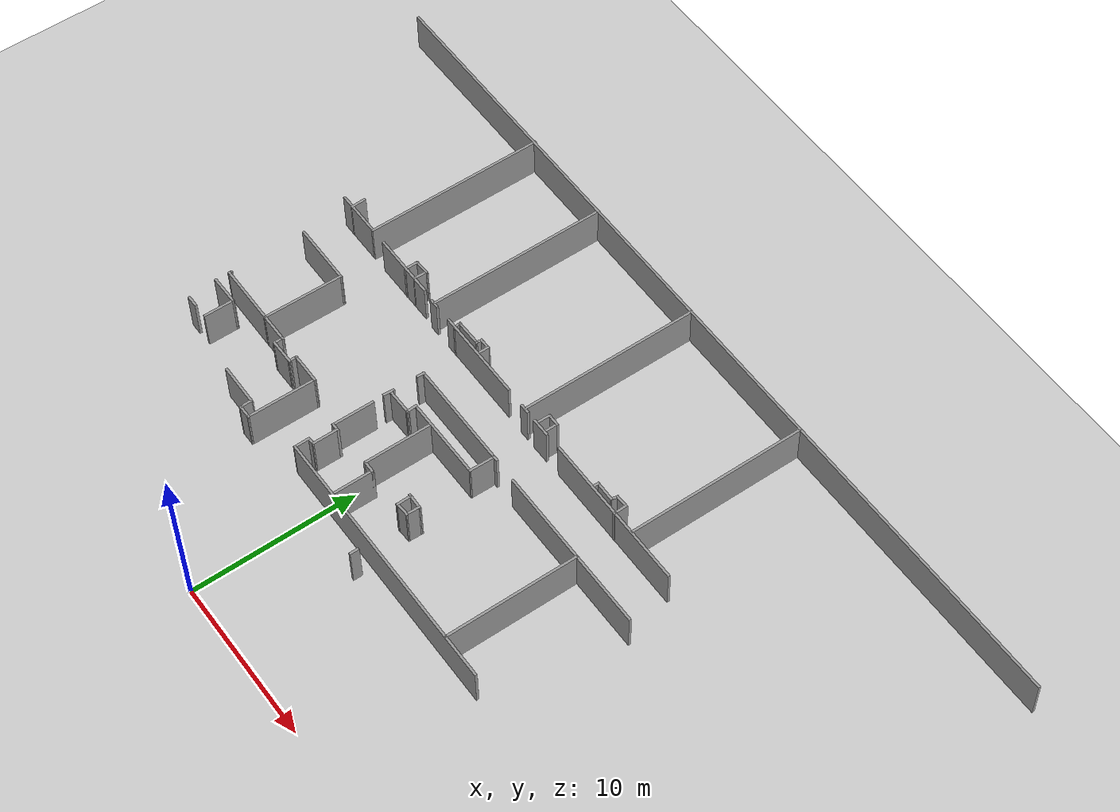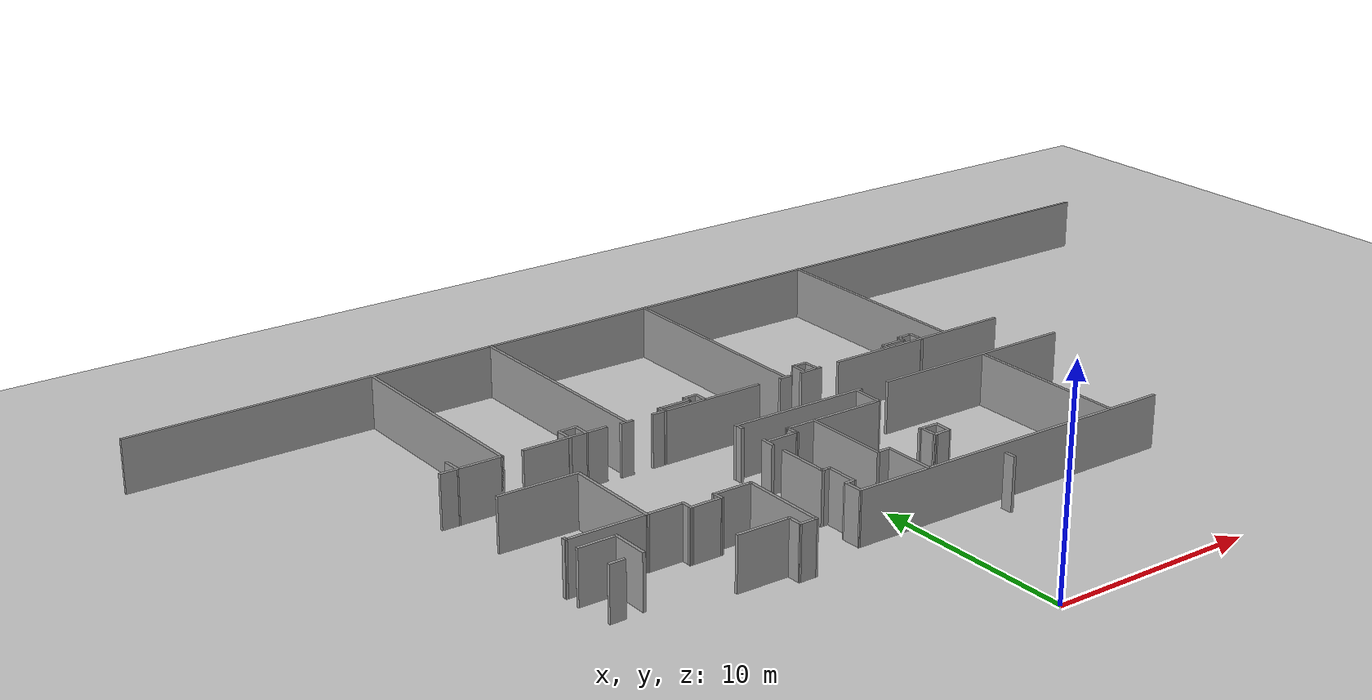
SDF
<sdf version="1.7">
 <world name="default">
  <model name="ground_plane">
   <static>1</static>
   <link name="link">
    <collision name="collision">
     <geometry><plane><normal>0 0 1</normal><size>100 100</size></plane></geometry>
     <surface><friction><ode><mu>100</mu><mu2>50</mu2></ode></friction></surface>
    </collision>
    <visual name="visual">
     <cast_shadows>0</cast_shadows>
     <geometry><plane><normal>0 0 1</normal><size>100 100</size></plane></geometry>
     <material>
      <script><uri>file://media/materials/scripts/gazebo.material</uri><name>Gazebo/Grey</name></script>
     </material>
    </visual>
   </link>
  </model>
  <model name="HopperFloorGround_Full">
   <pose>5.96828 -4.00427 0 0 -0 0</pose>
   <link name="Wall_112">
    <collision name="Wall_112_Collision">
     <geometry><box><size>0.75 0.15 2.5</size></box></geometry>
     <pose>0 0 1.25 0 -0 0</pose>
    </collision>
    <visual name="Wall_112_Visual">
     <pose>0 0 1.25 0 -0 0</pose>
     <geometry><box><size>0.75 0.15 2.5</size></box></geometry>
     <material>
      <script><uri>file://media/materials/scripts/gazebo.material</uri><name>Gazebo/Grey</name></script>
      <ambient>1 1 1 1</ambient>
     </material>
     <meta><layer>0</layer></meta>
    </visual>
    <pose>-20.122 12.8829 0 0 -0 3.14159</pose>
   </link>
   <link name="Wall_143">
    <collision name="Wall_143_Collision">
     <geometry><box><size>3.9067 0.15 2.5</size></box></geometry>
     <pose>0 0 1.25 0 -0 0</pose>
    </collision>
    <visual name="Wall_143_Visual">
     <pose>0 0 1.25 0 -0 0</pose>
     <geometry><box><size>3.9067 0.15 2.5</size></box></geometry>
     <material>
      <script><uri>file://media/materials/scripts/gazebo.material</uri><name>Gazebo/Grey</name></script>
      <ambient>1 1 1 1</ambient>
     </material>
     <meta><layer>0</layer></meta>
    </visual>
    <pose>-18.7599 20.2897 0 0 -0 -0.004631</pose>
   </link>
   <link name="Wall_144">
    <collision name="Wall_144_Collision">
     <geometry><box><size>4.92593 0.15 2.5</size></box></geometry>
     <pose>0 0 1.25 0 -0 0</pose>
    </collision>
    <visual name="Wall_144_Visual">
     <pose>0 0 1.25 0 -0 0</pose>
     <geometry><box><size>4.92593 0.15 2.5</size></box></geometry>
     <material>
      <script><uri>file://media/materials/scripts/gazebo.material</uri><name>Gazebo/Grey</name></script>
      <ambient>1 1 1 1</ambient>
     </material>
     <meta><layer>0</layer></meta>
    </visual>
    <pose>-16.9045 17.8932 0 0 -0 -1.58035</pose>
   </link>
   <link name="Wall_145">
    <collision name="Wall_145_Collision">
     <geometry><box><size>1.89901 0.15 2.5</size></box></geometry>
     <pose>0 0 1.25 0 -0 0</pose>
    </collision>
    <visual name="Wall_145_Visual">
     <pose>0 0 1.25 0 -0 0</pose>
     <geometry><box><size>1.89901 0.15 2.5</size></box></geometry>
     <material>
      <script><uri>file://media/materials/scripts/gazebo.material</uri><name>Gazebo/Grey</name></script>
      <ambient>1 1 1 1</ambient>
     </material>
     <meta><layer>0</layer></meta>
    </visual>
    <pose>-16.0528 15.5054 0 0 -0 0</pose>
   </link>
   <link name="Wall_147">
    <collision name="Wall_147_Collision">
     <geometry><box><size>0.25 0.15 2.5</size></box></geometry>
     <pose>0 0 1.25 0 -0 0</pose>
    </collision>
    <visual name="Wall_147_Visual">
     <pose>0 0 1.25 0 -0 0</pose>
     <geometry><box><size>0.25 0.15 2.5</size></box></geometry>
     <material>
      <script><uri>file://media/materials/scripts/gazebo.material</uri><name>Gazebo/Grey</name></script>
      <ambient>1 1 1 1</ambient>
     </material>
     <meta><layer>0</layer></meta>
    </visual>
    <pose>-20.623 15.5619 0 0 -0 -1.5708</pose>
   </link>
   <link name="Wall_148">
    <collision name="Wall_148_Collision">
     <geometry><box><size>3.84573 0.15 2.5</size></box></geometry>
     <pose>0 0 1.25 0 -0 0</pose>
    </collision>
    <visual name="Wall_148_Visual">
     <pose>0 0 1.25 0 -0 0</pose>
     <geometry><box><size>3.84573 0.15 2.5</size></box></geometry>
     <material>
      <script><uri>file://media/materials/scripts/gazebo.material</uri><name>Gazebo/Grey</name></script>
      <ambient>1 1 1 1</ambient>
     </material>
     <meta><layer>0</layer></meta>
    </visual>
    <pose>-18.7751 15.5087 0 0 -0 -0.001748</pose>
   </link>
   <link name="Wall_152">
    <collision name="Wall_152_Collision">
     <geometry><box><size>0.651889 0.15 2.5</size></box></geometry>
     <pose>0 0 1.25 0 -0 0</pose>
    </collision>
    <visual name="Wall_152_Visual">
     <pose>0 0 1.25 0 -0 0</pose>
     <geometry><box><size>0.651889 0.15 2.5</size></box></geometry>
     <material>
      <script><uri>file://media/materials/scripts/gazebo.material</uri><name>Gazebo/Grey</name></script>
      <ambient>1 1 1 1</ambient>
     </material>
     <meta><layer>0</layer></meta>
    </visual>
    <pose>-15.1783 15.2545 0 0 -0 -1.5708</pose>
   </link>
   <link name="Wall_153">
    <collision name="Wall_153_Collision">
     <geometry><box><size>1.64054 0.15 2.5</size></box></geometry>
     <pose>0 0 1.25 0 -0 0</pose>
    </collision>
    <visual name="Wall_153_Visual">
     <pose>0 0 1.25 0 -0 0</pose>
     <geometry><box><size>1.64054 0.15 2.5</size></box></geometry>
     <material>
      <script><uri>file://media/materials/scripts/gazebo.material</uri><name>Gazebo/Grey</name></script>
      <ambient>1 1 1 1</ambient>
     </material>
     <meta><layer>0</layer></meta>
    </visual>
    <pose>-14.433 15.0112 0 0 -0 0.010204</pose>
   </link>
   <link name="Wall_154">
    <collision name="Wall_154_Collision">
     <geometry><box><size>0.576116 0.15 2.5</size></box></geometry>
     <pose>0 0 1.25 0 -0 0</pose>
    </collision>
    <visual name="Wall_154_Visual">
     <pose>0 0 1.25 0 -0 0</pose>
     <geometry><box><size>0.576116 0.15 2.5</size></box></geometry>
     <material>
      <script><uri>file://media/materials/scripts/gazebo.material</uri><name>Gazebo/Grey</name></script>
      <ambient>1 1 1 1</ambient>
     </material>
     <meta><layer>0</layer></meta>
    </visual>
    <pose>-13.6954 15.2317 0 0 -0 1.6065</pose>
   </link>
   <link name="Wall_155">
    <collision name="Wall_155_Collision">
     <geometry><box><size>1.95991 0.15 2.5</size></box></geometry>
     <pose>0 0 1.25 0 -0 0</pose>
    </collision>
    <visual name="Wall_155_Visual">
     <pose>0 0 1.25 0 -0 0</pose>
     <geometry><box><size>1.95991 0.15 2.5</size></box></geometry>
     <material>
      <script><uri>file://media/materials/scripts/gazebo.material</uri><name>Gazebo/Grey</name></script>
      <ambient>1 1 1 1</ambient>
     </material>
     <meta><layer>0</layer></meta>
    </visual>
    <pose>-12.7981 15.4446 0 0 -0 0</pose>
   </link>
   <link name="Wall_156">
    <collision name="Wall_156_Collision">
     <geometry><box><size>4.22595 0.15 2.5</size></box></geometry>
     <pose>0 0 1.25 0 -0 0</pose>
    </collision>
    <visual name="Wall_156_Visual">
     <pose>0 0 1.25 0 -0 0</pose>
     <geometry><box><size>4.22595 0.15 2.5</size></box></geometry>
     <material>
      <script><uri>file://media/materials/scripts/gazebo.material</uri><name>Gazebo/Grey</name></script>
      <ambient>1 1 1 1</ambient>
     </material>
     <meta><layer>0</layer></meta>
    </visual>
    <pose>-11.9008 13.4066 0 0 -0 -1.57453</pose>
   </link>
   <link name="Wall_157">
    <collision name="Wall_157_Collision">
     <geometry><box><size>0.910437 0.15 2.5</size></box></geometry>
     <pose>0 0 1.25 0 -0 0</pose>
    </collision>
    <visual name="Wall_157_Visual">
     <pose>0 0 1.25 0 -0 0</pose>
     <geometry><box><size>0.910437 0.15 2.5</size></box></geometry>
     <material>
      <script><uri>file://media/materials/scripts/gazebo.material</uri><name>Gazebo/Grey</name></script>
      <ambient>1 1 1 1</ambient>
     </material>
     <meta><layer>0</layer></meta>
    </visual>
    <pose>-12.2886 11.3687 0 0 -0 3.14159</pose>
   </link>
   <link name="Wall_158">
    <collision name="Wall_158_Collision">
     <geometry><box><size>0.804683 0.15 2.5</size></box></geometry>
     <pose>0 0 1.25 0 -0 0</pose>
    </collision>
    <visual name="Wall_158_Visual">
     <pose>0 0 1.25 0 -0 0</pose>
     <geometry><box><size>0.804683 0.15 2.5</size></box></geometry>
     <material>
      <script><uri>file://media/materials/scripts/gazebo.material</uri><name>Gazebo/Grey</name></script>
      <ambient>1 1 1 1</ambient>
     </material>
     <meta><layer>0</layer></meta>
    </visual>
    <pose>-12.6764 11.6956 0 0 -0 1.59405</pose>
   </link>
   <link name="Wall_159">
    <collision name="Wall_159_Collision">
     <geometry><box><size>2.61386 0.15 2.5</size></box></geometry>
     <pose>0 0 1.25 0 -0 0</pose>
    </collision>
    <visual name="Wall_159_Visual">
     <pose>0 0 1.25 0 -0 0</pose>
     <geometry><box><size>2.61386 0.15 2.5</size></box></geometry>
     <material>
      <script><uri>file://media/materials/scripts/gazebo.material</uri><name>Gazebo/Grey</name></script>
      <ambient>1 1 1 1</ambient>
     </material>
     <meta><layer>0</layer></meta>
    </visual>
    <pose>-13.916 12.0302 0 0 -0 3.13542</pose>
   </link>
   <link name="Wall_286">
    <collision name="Wall_286_Collision">
     <geometry><box><size>1.87846 0.15 2.5</size></box></geometry>
     <pose>0 0 1.25 0 -0 0</pose>
    </collision>
    <visual name="Wall_286_Visual">
     <pose>0 0 1.25 0 -0 0</pose>
     <geometry><box><size>1.87846 0.15 2.5</size></box></geometry>
     <material>
      <script><uri>file://media/materials/scripts/gazebo.material</uri><name>Gazebo/Grey</name></script>
      <ambient>1 1 1 1</ambient>
     </material>
     <meta><layer>0</layer></meta>
    </visual>
    <pose>-19.759 14.6693 0 0 -0 0.008549</pose>
   </link>
   <link name="Wall_287">
    <collision name="Wall_287_Collision">
     <geometry><box><size>1.88883 0.15 2.5</size></box></geometry>
     <pose>0 0 1.25 0 -0 0</pose>
    </collision>
    <visual name="Wall_287_Visual">
     <pose>0 0 1.25 0 -0 0</pose>
     <geometry><box><size>1.88883 0.15 2.5</size></box></geometry>
     <material>
      <script><uri>file://media/materials/scripts/gazebo.material</uri><name>Gazebo/Grey</name></script>
      <ambient>1 1 1 1</ambient>
     </material>
     <meta><layer>0</layer></meta>
    </visual>
    <pose>-18.895 13.8073 0 0 -0 -1.5708</pose>
   </link>
   <link name="Wall_312">
    <collision name="Wall_312_Collision">
     <geometry><box><size>3 0.15 2.5</size></box></geometry>
     <pose>0 0 1.25 0 -0 0</pose>
    </collision>
    <visual name="Wall_312_Visual">
     <pose>0 0 1.25 0 -0 0</pose>
     <geometry><box><size>3 0.15 2.5</size></box></geometry>
     <material>
      <script><uri>file://media/materials/scripts/gazebo.material</uri><name>Gazebo/Grey</name></script>
      <ambient>1 1 1 1</ambient>
     </material>
     <meta><layer>0</layer></meta>
    </visual>
    <pose>-19.9465 23.4526 0 0 -0 0</pose>
   </link>
   <link name="Wall_314">
    <collision name="Wall_314_Collision">
     <geometry><box><size>4.15469 0.15 2.5</size></box></geometry>
     <pose>0 0 1.25 0 -0 0</pose>
    </collision>
    <visual name="Wall_314_Visual">
     <pose>0 0 1.25 0 -0 0</pose>
     <geometry><box><size>4.15469 0.15 2.5</size></box></geometry>
     <material>
      <script><uri>file://media/materials/scripts/gazebo.material</uri><name>Gazebo/Grey</name></script>
      <ambient>1 1 1 1</ambient>
     </material>
     <meta><layer>0</layer></meta>
    </visual>
    <pose>-15.4399 23.4526 0 0 -0 0</pose>
   </link>
   <link name="Wall_318">
    <collision name="Wall_318_Collision">
     <geometry><box><size>0.924084 0.15 2.5</size></box></geometry>
     <pose>0 0 1.25 0 -0 0</pose>
    </collision>
    <visual name="Wall_318_Visual">
     <pose>0 0 1.25 0 -0 0</pose>
     <geometry><box><size>0.924084 0.15 2.5</size></box></geometry>
     <material>
      <script><uri>file://media/materials/scripts/gazebo.material</uri><name>Gazebo/Grey</name></script>
      <ambient>1 1 1 1</ambient>
     </material>
     <meta><layer>0</layer></meta>
    </visual>
    <pose>-20.6135 23.8393 0 0 -0 -1.53082</pose>
   </link>
   <link name="Wall_320">
    <collision name="Wall_320_Collision">
     <geometry><box><size>0.516732 0.15 2.5</size></box></geometry>
     <pose>0 0 1.25 0 -0 0</pose>
    </collision>
    <visual name="Wall_320_Visual">
     <pose>0 0 1.25 0 -0 0</pose>
     <geometry><box><size>0.516732 0.15 2.5</size></box></geometry>
     <material>
      <script><uri>file://media/materials/scripts/gazebo.material</uri><name>Gazebo/Grey</name></script>
      <ambient>1 1 1 1</ambient>
     </material>
     <meta><layer>0</layer></meta>
    </visual>
    <pose>-8.86715 20.1664 0 0 -0 1.5153</pose>
   </link>
   <link name="Wall_321">
    <collision name="Wall_321_Collision">
     <geometry><box><size>6.94445 0.15 2.5</size></box></geometry>
     <pose>0 0 1.25 0 -0 0</pose>
    </collision>
    <visual name="Wall_321_Visual">
     <pose>0 0 1.25 0 -0 0</pose>
     <geometry><box><size>6.94445 0.15 2.5</size></box></geometry>
     <material>
      <script><uri>file://media/materials/scripts/gazebo.material</uri><name>Gazebo/Grey</name></script>
      <ambient>1 1 1 1</ambient>
     </material>
     <meta><layer>0</layer></meta>
    </visual>
    <pose>-5.48009 20.3494 0 0 -0 0</pose>
   </link>
   <link name="Wall_324">
    <collision name="Wall_324_Collision">
     <geometry><box><size>1.61481 0.15 2.5</size></box></geometry>
     <pose>0 0 1.25 0 -0 0</pose>
    </collision>
    <visual name="Wall_324_Visual">
     <pose>0 0 1.25 0 -0 0</pose>
     <geometry><box><size>1.61481 0.15 2.5</size></box></geometry>
     <material>
      <script><uri>file://media/materials/scripts/gazebo.material</uri><name>Gazebo/Grey</name></script>
      <ambient>1 1 1 1</ambient>
     </material>
     <meta><layer>0</layer></meta>
    </visual>
    <pose>-2.31681 19.5968 0 0 -0 -1.58468</pose>
   </link>
   <link name="Wall_325">
    <collision name="Wall_325_Collision">
     <geometry><box><size>5.17468 0.15 2.5</size></box></geometry>
     <pose>0 0 1.25 0 -0 0</pose>
    </collision>
    <visual name="Wall_325_Visual">
     <pose>0 0 1.25 0 -0 0</pose>
     <geometry><box><size>5.17468 0.15 2.5</size></box></geometry>
     <material>
      <script><uri>file://media/materials/scripts/gazebo.material</uri><name>Gazebo/Grey</name></script>
      <ambient>1 1 1 1</ambient>
     </material>
     <meta><layer>0</layer></meta>
    </visual>
    <pose>-4.8393 18.8543 0 0 -0 -3.13754</pose>
   </link>
   <link name="Wall_326">
    <collision name="Wall_326_Collision">
     <geometry><box><size>0.700756 0.15 2.5</size></box></geometry>
     <pose>0 0 1.25 0 -0 0</pose>
    </collision>
    <visual name="Wall_326_Visual">
     <pose>0 0 1.25 0 -0 0</pose>
     <geometry><box><size>0.700756 0.15 2.5</size></box></geometry>
     <material>
      <script><uri>file://media/materials/scripts/gazebo.material</uri><name>Gazebo/Grey</name></script>
      <ambient>1 1 1 1</ambient>
     </material>
     <meta><layer>0</layer></meta>
    </visual>
    <pose>-7.33128 18.5695 0 0 -0 -1.49686</pose>
   </link>
   <link name="Wall_327">
    <collision name="Wall_327_Collision">
     <geometry><box><size>1.67583 0.15 2.5</size></box></geometry>
     <pose>0 0 1.25 0 -0 0</pose>
    </collision>
    <visual name="Wall_327_Visual">
     <pose>0 0 1.25 0 -0 0</pose>
     <geometry><box><size>1.67583 0.15 2.5</size></box></geometry>
     <material>
      <script><uri>file://media/materials/scripts/gazebo.material</uri><name>Gazebo/Grey</name></script>
      <ambient>1 1 1 1</ambient>
     </material>
     <meta><layer>0</layer></meta>
    </visual>
    <pose>-8.07378 18.2847 0 0 -0 -3.12826</pose>
   </link>
   <link name="Wall_329">
    <collision name="Wall_329_Collision">
     <geometry><box><size>0.699628 0.15 2.5</size></box></geometry>
     <pose>0 0 1.25 0 -0 0</pose>
    </collision>
    <visual name="Wall_329_Visual">
     <pose>0 0 1.25 0 -0 0</pose>
     <geometry><box><size>0.699628 0.15 2.5</size></box></geometry>
     <material>
      <script><uri>file://media/materials/scripts/gazebo.material</uri><name>Gazebo/Grey</name></script>
      <ambient>1 1 1 1</ambient>
     </material>
     <meta><layer>0</layer></meta>
    </visual>
    <pose>-8.90783 18.1626 0 0 -0 1.53378</pose>
   </link>
   <link name="Wall_331">
    <collision name="Wall_331_Collision">
     <geometry><box><size>2.59112 0.15 2.5</size></box></geometry>
     <pose>0 0 1.25 0 -0 0</pose>
    </collision>
    <visual name="Wall_331_Visual">
     <pose>0 0 1.25 0 -0 0</pose>
     <geometry><box><size>2.59112 0.15 2.5</size></box></geometry>
     <material>
      <script><uri>file://media/materials/scripts/gazebo.material</uri><name>Gazebo/Grey</name></script>
      <ambient>1 1 1 1</ambient>
     </material>
     <meta><layer>0</layer></meta>
    </visual>
    <pose>-8.87732 15.9147 0 0 -0 -1.5708</pose>
   </link>
   <link name="Wall_332">
    <collision name="Wall_332_Collision">
     <geometry><box><size>0.53651 0.15 2.5</size></box></geometry>
     <pose>0 0 1.25 0 -0 0</pose>
    </collision>
    <visual name="Wall_332_Visual">
     <pose>0 0 1.25 0 -0 0</pose>
     <geometry><box><size>0.53651 0.15 2.5</size></box></geometry>
     <material>
      <script><uri>file://media/materials/scripts/gazebo.material</uri><name>Gazebo/Grey</name></script>
      <ambient>1 1 1 1</ambient>
     </material>
     <meta><layer>0</layer></meta>
    </visual>
    <pose>-8.68406 14.6942 0 0 -0 0</pose>
   </link>
   <link name="Wall_333">
    <collision name="Wall_333_Collision">
     <geometry><box><size>1.63501 0.15 2.5</size></box></geometry>
     <pose>0 0 1.25 0 -0 0</pose>
    </collision>
    <visual name="Wall_333_Visual">
     <pose>0 0 1.25 0 -0 0</pose>
     <geometry><box><size>1.63501 0.15 2.5</size></box></geometry>
     <material>
      <script><uri>file://media/materials/scripts/gazebo.material</uri><name>Gazebo/Grey</name></script>
      <ambient>1 1 1 1</ambient>
     </material>
     <meta><layer>0</layer></meta>
    </visual>
    <pose>-8.49081 13.9517 0 0 -0 -1.5708</pose>
   </link>
   <link name="Wall_334">
    <collision name="Wall_334_Collision">
     <geometry><box><size>0.537045 0.15 2.5</size></box></geometry>
     <pose>0 0 1.25 0 -0 0</pose>
    </collision>
    <visual name="Wall_334_Visual">
     <pose>0 0 1.25 0 -0 0</pose>
     <geometry><box><size>0.537045 0.15 2.5</size></box></geometry>
     <material>
      <script><uri>file://media/materials/scripts/gazebo.material</uri><name>Gazebo/Grey</name></script>
      <ambient>1 1 1 1</ambient>
     </material>
     <meta><layer>0</layer></meta>
    </visual>
    <pose>-8.68406 13.199 0 0 -0 -3.08901</pose>
   </link>
   <link name="Wall_335">
    <collision name="Wall_335_Collision">
     <geometry><box><size>1.00463 0.15 2.5</size></box></geometry>
     <pose>0 0 1.25 0 -0 0</pose>
    </collision>
    <visual name="Wall_335_Visual">
     <pose>0 0 1.25 0 -0 0</pose>
     <geometry><box><size>1.00463 0.15 2.5</size></box></geometry>
     <material>
      <script><uri>file://media/materials/scripts/gazebo.material</uri><name>Gazebo/Grey</name></script>
      <ambient>1 1 1 1</ambient>
     </material>
     <meta><layer>0</layer></meta>
    </visual>
    <pose>-8.86715 12.7616 0 0 -0 -1.54699</pose>
   </link>
   <link name="Wall_341">
    <collision name="Wall_341_Collision">
     <geometry><box><size>0.556853 0.15 2.5</size></box></geometry>
     <pose>0 0 1.25 0 -0 0</pose>
    </collision>
    <visual name="Wall_341_Visual">
     <pose>0 0 1.25 0 -0 0</pose>
     <geometry><box><size>0.556853 0.15 2.5</size></box></geometry>
     <material>
      <script><uri>file://media/materials/scripts/gazebo.material</uri><name>Gazebo/Grey</name></script>
      <ambient>1 1 1 1</ambient>
     </material>
     <meta><layer>0</layer></meta>
    </visual>
    <pose>-1.7167 11.358 0 0 -0 -1.5708</pose>
   </link>
   <link name="Wall_349">
    <collision name="Wall_349_Collision">
     <geometry><box><size>16.7089 0.15 2.5</size></box></geometry>
     <pose>0 0 1.25 0 -0 0</pose>
    </collision>
    <visual name="Wall_349_Visual">
     <pose>0 0 1.25 0 -0 0</pose>
     <geometry><box><size>16.7089 0.15 2.5</size></box></geometry>
     <material>
      <script><uri>file://media/materials/scripts/gazebo.material</uri><name>Gazebo/Grey</name></script>
      <ambient>1 1 1 1</ambient>
     </material>
     <meta><layer>0</layer></meta>
    </visual>
    <pose>-0.577515 12.3344 0 0 -0 0</pose>
   </link>
   <link name="Wall_426">
    <collision name="Wall_426_Collision">
     <geometry><box><size>10.25 0.15 2.5</size></box></geometry>
     <pose>0 0 1.25 0 -0 0</pose>
    </collision>
    <visual name="Wall_426_Visual">
     <pose>0 0 1.25 0 -0 0</pose>
     <geometry><box><size>10.25 0.15 2.5</size></box></geometry>
     <material>
      <script><uri>file://media/materials/scripts/gazebo.material</uri><name>Gazebo/Grey</name></script>
      <ambient>1 1 1 1</ambient>
     </material>
     <meta><layer>0</layer></meta>
    </visual>
    <pose>4.53361 20.3089 0 0 -0 3.14159</pose>
   </link>
   <link name="Wall_428">
    <collision name="Wall_428_Collision">
     <geometry><box><size>0.969126 0.15 2.5</size></box></geometry>
     <pose>0 0 1.25 0 -0 0</pose>
    </collision>
    <visual name="Wall_428_Visual">
     <pose>0 0 1.25 0 -0 0</pose>
     <geometry><box><size>0.969126 0.15 2.5</size></box></geometry>
     <material>
      <script><uri>file://media/materials/scripts/gazebo.material</uri><name>Gazebo/Grey</name></script>
      <ambient>1 1 1 1</ambient>
     </material>
     <meta><layer>0</layer></meta>
    </visual>
    <pose>-2.80354 15.1119 0 0 -0 -1.54223</pose>
   </link>
   <link name="Wall_429">
    <collision name="Wall_429_Collision">
     <geometry><box><size>0.92342 0.15 2.5</size></box></geometry>
     <pose>0 0 1.25 0 -0 0</pose>
    </collision>
    <visual name="Wall_429_Visual">
     <pose>0 0 1.25 0 -0 0</pose>
     <geometry><box><size>0.92342 0.15 2.5</size></box></geometry>
     <material>
      <script><uri>file://media/materials/scripts/gazebo.material</uri><name>Gazebo/Grey</name></script>
      <ambient>1 1 1 1</ambient>
     </material>
     <meta><layer>0</layer></meta>
    </visual>
    <pose>-2.40584 14.7259 0 0 -0 0.060532</pose>
   </link>
   <link name="Wall_430">
    <collision name="Wall_430_Collision">
     <geometry><box><size>0.898975 0.15 2.5</size></box></geometry>
     <pose>0 0 1.25 0 -0 0</pose>
    </collision>
    <visual name="Wall_430_Visual">
     <pose>0 0 1.25 0 -0 0</pose>
     <geometry><box><size>0.898975 0.15 2.5</size></box></geometry>
     <material>
      <script><uri>file://media/materials/scripts/gazebo.material</uri><name>Gazebo/Grey</name></script>
      <ambient>1 1 1 1</ambient>
     </material>
     <meta><layer>0</layer></meta>
    </visual>
    <pose>-2.00814 15.1236 0 0 -0 1.53956</pose>
   </link>
   <link name="Wall_431">
    <collision name="Wall_431_Collision">
     <geometry><box><size>1.03928 0.15 2.5</size></box></geometry>
     <pose>0 0 1.25 0 -0 0</pose>
    </collision>
    <visual name="Wall_431_Visual">
     <pose>0 0 1.25 0 -0 0</pose>
     <geometry><box><size>1.03928 0.15 2.5</size></box></geometry>
     <material>
      <script><uri>file://media/materials/scripts/gazebo.material</uri><name>Gazebo/Grey</name></script>
      <ambient>1 1 1 1</ambient>
     </material>
     <meta><layer>0</layer></meta>
    </visual>
    <pose>-2.44093 15.5096 0 0 -0 3.11528</pose>
   </link>
   <link name="Wall_433">
    <collision name="Wall_433_Collision">
     <geometry><box><size>8.01044 0.15 2.5</size></box></geometry>
     <pose>0 0 1.25 0 -0 0</pose>
    </collision>
    <visual name="Wall_433_Visual">
     <pose>0 0 1.25 0 -0 0</pose>
     <geometry><box><size>8.01044 0.15 2.5</size></box></geometry>
     <material>
      <script><uri>file://media/materials/scripts/gazebo.material</uri><name>Gazebo/Grey</name></script>
      <ambient>1 1 1 1</ambient>
     </material>
     <meta><layer>0</layer></meta>
    </visual>
    <pose>5.10365 16.3167 0 0 -0 1.56782</pose>
   </link>
   <link name="Wall_457">
    <collision name="Wall_457_Collision">
     <geometry><box><size>54.7652 0.15 2.5</size></box></geometry>
     <pose>0 0 1.25 0 -0 0</pose>
    </collision>
    <visual name="Wall_457_Visual">
     <pose>0 0 1.25 0 -0 0</pose>
     <geometry><box><size>54.7652 0.15 2.5</size></box></geometry>
     <material>
      <script><uri>file://media/materials/scripts/gazebo.material</uri><name>Gazebo/Grey</name></script>
      <ambient>1 1 1 1</ambient>
     </material>
     <meta><layer>0</layer></meta>
    </visual>
    <pose>-2.94935 34.2729 0 0 -0 0.000282</pose>
   </link>
   <link name="Wall_459">
    <collision name="Wall_459_Collision">
     <geometry><box><size>11 0.15 2.5</size></box></geometry>
     <pose>0 0 1.25 0 -0 0</pose>
    </collision>
    <visual name="Wall_459_Visual">
     <pose>0 0 1.25 0 -0 0</pose>
     <geometry><box><size>11 0.15 2.5</size></box></geometry>
     <material>
      <script><uri>file://media/materials/scripts/gazebo.material</uri><name>Gazebo/Grey</name></script>
      <ambient>1 1 1 1</ambient>
     </material>
     <meta><layer>0</layer></meta>
    </visual>
    <pose>-18.5215 28.8776 0 0 -0 1.5708</pose>
   </link>
   <link name="Wall_461">
    <collision name="Wall_461_Collision">
     <geometry><box><size>11 0.15 2.5</size></box></geometry>
     <pose>0 0 1.25 0 -0 0</pose>
    </collision>
    <visual name="Wall_461_Visual">
     <pose>0 0 1.25 0 -0 0</pose>
     <geometry><box><size>11 0.15 2.5</size></box></geometry>
     <material>
      <script><uri>file://media/materials/scripts/gazebo.material</uri><name>Gazebo/Grey</name></script>
      <ambient>1 1 1 1</ambient>
     </material>
     <meta><layer>0</layer></meta>
    </visual>
    <pose>-12.3846 28.8556 0 0 -0 -1.5708</pose>
   </link>
   <link name="Wall_463">
    <collision name="Wall_463_Collision">
     <geometry><box><size>5.75 0.15 2.5</size></box></geometry>
     <pose>0 0 1.25 0 -0 0</pose>
    </collision>
    <visual name="Wall_463_Visual">
     <pose>0 0 1.25 0 -0 0</pose>
     <geometry><box><size>5.75 0.15 2.5</size></box></geometry>
     <material>
      <script><uri>file://media/materials/scripts/gazebo.material</uri><name>Gazebo/Grey</name></script>
      <ambient>1 1 1 1</ambient>
     </material>
     <meta><layer>0</layer></meta>
    </visual>
    <pose>-8.19346 23.3968 0 0 -0 0</pose>
   </link>
   <link name="Wall_465">
    <collision name="Wall_465_Collision">
     <geometry><box><size>0.634532 0.15 2.5</size></box></geometry>
     <pose>0 0 1.25 0 -0 0</pose>
    </collision>
    <visual name="Wall_465_Visual">
     <pose>0 0 1.25 0 -0 0</pose>
     <geometry><box><size>0.634532 0.15 2.5</size></box></geometry>
     <material>
      <script><uri>file://media/materials/scripts/gazebo.material</uri><name>Gazebo/Grey</name></script>
      <ambient>1 1 1 1</ambient>
     </material>
     <meta><layer>0</layer></meta>
    </visual>
    <pose>-12.3861 23.3751 0 0 -0 0</pose>
   </link>
   <link name="Wall_467">
    <collision name="Wall_467_Collision">
     <geometry><box><size>0.634532 0.15 2.5</size></box></geometry>
     <pose>0 0 1.25 0 -0 0</pose>
    </collision>
    <visual name="Wall_467_Visual">
     <pose>0 0 1.25 0 -0 0</pose>
     <geometry><box><size>0.634532 0.15 2.5</size></box></geometry>
     <material>
      <script><uri>file://media/materials/scripts/gazebo.material</uri><name>Gazebo/Grey</name></script>
      <ambient>1 1 1 1</ambient>
     </material>
     <meta><layer>0</layer></meta>
    </visual>
    <pose>-3.86453 23.3751 0 0 -0 0</pose>
   </link>
   <link name="Wall_469">
    <collision name="Wall_469_Collision">
     <geometry><box><size>1.17293 0.15 2.5</size></box></geometry>
     <pose>0 0 1.25 0 -0 0</pose>
    </collision>
    <visual name="Wall_469_Visual">
     <pose>0 0 1.25 0 -0 0</pose>
     <geometry><box><size>1.17293 0.15 2.5</size></box></geometry>
     <material>
      <script><uri>file://media/materials/scripts/gazebo.material</uri><name>Gazebo/Grey</name></script>
      <ambient>1 1 1 1</ambient>
     </material>
     <meta><layer>0</layer></meta>
    </visual>
    <pose>-2.41093 23.3712 0 0 -0 0.007519</pose>
   </link>
   <link name="Wall_472">
    <collision name="Wall_472_Collision">
     <geometry><box><size>0.942321 0.15 2.5</size></box></geometry>
     <pose>0 0 1.25 0 -0 0</pose>
    </collision>
    <visual name="Wall_472_Visual">
     <pose>0 0 1.25 0 -0 0</pose>
     <geometry><box><size>0.942321 0.15 2.5</size></box></geometry>
     <material>
      <script><uri>file://media/materials/scripts/gazebo.material</uri><name>Gazebo/Grey</name></script>
      <ambient>1 1 1 1</ambient>
     </material>
     <meta><layer>0</layer></meta>
    </visual>
    <pose>-2.75318 23.7788 0 0 -0 1.55138</pose>
   </link>
   <link name="Wall_473">
    <collision name="Wall_473_Collision">
     <geometry><box><size>0.82685 0.15 2.5</size></box></geometry>
     <pose>0 0 1.25 0 -0 0</pose>
    </collision>
    <visual name="Wall_473_Visual">
     <pose>0 0 1.25 0 -0 0</pose>
     <geometry><box><size>0.82685 0.15 2.5</size></box></geometry>
     <material>
      <script><uri>file://media/materials/scripts/gazebo.material</uri><name>Gazebo/Grey</name></script>
      <ambient>1 1 1 1</ambient>
     </material>
     <meta><layer>0</layer></meta>
    </visual>
    <pose>-2.40709 24.1749 0 0 -0 0</pose>
   </link>
   <link name="Wall_474">
    <collision name="Wall_474_Collision">
     <geometry><box><size>0.93448 0.15 2.5</size></box></geometry>
     <pose>0 0 1.25 0 -0 0</pose>
    </collision>
    <visual name="Wall_474_Visual">
     <pose>0 0 1.25 0 -0 0</pose>
     <geometry><box><size>0.93448 0.15 2.5</size></box></geometry>
     <material>
      <script><uri>file://media/materials/scripts/gazebo.material</uri><name>Gazebo/Grey</name></script>
      <ambient>1 1 1 1</ambient>
     </material>
     <meta><layer>0</layer></meta>
    </visual>
    <pose>-2.06868 23.7827 0 0 -0 -1.5708</pose>
   </link>
   <link name="Wall_476">
    <collision name="Wall_476_Collision">
     <geometry><box><size>9.61763 0.15 2.5</size></box></geometry>
     <pose>0 0 1.25 0 -0 0</pose>
    </collision>
    <visual name="Wall_476_Visual">
     <pose>0 0 1.25 0 -0 0</pose>
     <geometry><box><size>9.61763 0.15 2.5</size></box></geometry>
     <material>
      <script><uri>file://media/materials/scripts/gazebo.material</uri><name>Gazebo/Grey</name></script>
      <ambient>1 1 1 1</ambient>
     </material>
     <meta><layer>0</layer></meta>
    </visual>
    <pose>3.97259 23.3981 0 0 -0 -0.001625</pose>
   </link>
   <link name="Wall_508">
    <collision name="Wall_508_Collision">
     <geometry><box><size>10.9523 0.15 2.5</size></box></geometry>
     <pose>0 0 1.25 0 -0 0</pose>
    </collision>
    <visual name="Wall_508_Visual">
     <pose>0 0 1.25 0 -0 0</pose>
     <geometry><box><size>10.9523 0.15 2.5</size></box></geometry>
     <material>
      <script><uri>file://media/materials/scripts/gazebo.material</uri><name>Gazebo/Grey</name></script>
      <ambient>1 1 1 1</ambient>
     </material>
     <meta><layer>0</layer></meta>
    </visual>
    <pose>5.592 28.8856 0 0 -0 1.56576</pose>
   </link>
   <link name="Wall_510">
    <collision name="Wall_510_Collision">
     <geometry><box><size>10.9794 0.15 2.5</size></box></geometry>
     <pose>0 0 1.25 0 -0 0</pose>
    </collision>
    <visual name="Wall_510_Visual">
     <pose>0 0 1.25 0 -0 0</pose>
     <geometry><box><size>10.9794 0.15 2.5</size></box></geometry>
     <material>
      <script><uri>file://media/materials/scripts/gazebo.material</uri><name>Gazebo/Grey</name></script>
      <ambient>1 1 1 1</ambient>
     </material>
     <meta><layer>0</layer></meta>
    </visual>
    <pose>-3.83612 28.8176 0 0 -0 1.56828</pose>
   </link>
   <link name="Wall_512">
    <collision name="Wall_512_Collision">
     <geometry><box><size>0.75 0.15 2.5</size></box></geometry>
     <pose>0 0 1.25 0 -0 0</pose>
    </collision>
    <visual name="Wall_512_Visual">
     <pose>0 0 1.25 0 -0 0</pose>
     <geometry><box><size>0.75 0.15 2.5</size></box></geometry>
     <material>
      <script><uri>file://media/materials/scripts/gazebo.material</uri><name>Gazebo/Grey</name></script>
      <ambient>1 1 1 1</ambient>
     </material>
     <meta><layer>0</layer></meta>
    </visual>
    <pose>-8.25767 23.7573 0 0 -0 1.5708</pose>
   </link>
   <link name="Wall_513">
    <collision name="Wall_513_Collision">
     <geometry><box><size>0.75 0.15 2.5</size></box></geometry>
     <pose>0 0 1.25 0 -0 0</pose>
    </collision>
    <visual name="Wall_513_Visual">
     <pose>0 0 1.25 0 -0 0</pose>
     <geometry><box><size>0.75 0.15 2.5</size></box></geometry>
     <material>
      <script><uri>file://media/materials/scripts/gazebo.material</uri><name>Gazebo/Grey</name></script>
      <ambient>1 1 1 1</ambient>
     </material>
     <meta><layer>0</layer></meta>
    </visual>
    <pose>-8.55767 24.0573 0 0 -0 3.14159</pose>
   </link>
   <link name="Wall_514">
    <collision name="Wall_514_Collision">
     <geometry><box><size>0.447466 0.15 2.5</size></box></geometry>
     <pose>0 0 1.25 0 -0 0</pose>
    </collision>
    <visual name="Wall_514_Visual">
     <pose>0 0 1.25 0 -0 0</pose>
     <geometry><box><size>0.447466 0.15 2.5</size></box></geometry>
     <material>
      <script><uri>file://media/materials/scripts/gazebo.material</uri><name>Gazebo/Grey</name></script>
      <ambient>1 1 1 1</ambient>
     </material>
     <meta><layer>0</layer></meta>
    </visual>
    <pose>-8.87185 23.9092 0 0 -0 -1.66629</pose>
   </link>
   <link name="Wall_515">
    <collision name="Wall_515_Collision">
     <geometry><box><size>1.71379 0.15 2.5</size></box></geometry>
     <pose>0 0 1.25 0 -0 0</pose>
    </collision>
    <visual name="Wall_515_Visual">
     <pose>0 0 1.25 0 -0 0</pose>
     <geometry><box><size>1.71379 0.15 2.5</size></box></geometry>
     <material>
      <script><uri>file://media/materials/scripts/gazebo.material</uri><name>Gazebo/Grey</name></script>
      <ambient>1 1 1 1</ambient>
     </material>
     <meta><layer>0</layer></meta>
    </visual>
    <pose>-9.66786 23.7509 0 0 -0 -3.12844</pose>
   </link>
   <link name="Wall_516">
    <collision name="Wall_516_Collision">
     <geometry><box><size>0.502176 0.15 2.5</size></box></geometry>
     <pose>0 0 1.25 0 -0 0</pose>
    </collision>
    <visual name="Wall_516_Visual">
     <pose>0 0 1.25 0 -0 0</pose>
     <geometry><box><size>0.502176 0.15 2.5</size></box></geometry>
     <material>
      <script><uri>file://media/materials/scripts/gazebo.material</uri><name>Gazebo/Grey</name></script>
      <ambient>1 1 1 1</ambient>
     </material>
     <meta><layer>0</layer></meta>
    </visual>
    <pose>-10.4291 23.5657 0 0 -0 -1.45369</pose>
   </link>
   <link name="Wall_518">
    <collision name="Wall_518_Collision">
     <geometry><box><size>0.911529 0.15 2.5</size></box></geometry>
     <pose>0 0 1.25 0 -0 0</pose>
    </collision>
    <visual name="Wall_518_Visual">
     <pose>0 0 1.25 0 -0 0</pose>
     <geometry><box><size>0.911529 0.15 2.5</size></box></geometry>
     <material>
      <script><uri>file://media/materials/scripts/gazebo.material</uri><name>Gazebo/Grey</name></script>
      <ambient>1 1 1 1</ambient>
     </material>
     <meta><layer>0</layer></meta>
    </visual>
    <pose>-14.4102 23.8332 0 0 -0 1.54378</pose>
   </link>
   <link name="Wall_519">
    <collision name="Wall_519_Collision">
     <geometry><box><size>0.994551 0.15 2.5</size></box></geometry>
     <pose>0 0 1.25 0 -0 0</pose>
    </collision>
    <visual name="Wall_519_Visual">
     <pose>0 0 1.25 0 -0 0</pose>
     <geometry><box><size>0.994551 0.15 2.5</size></box></geometry>
     <material>
      <script><uri>file://media/materials/scripts/gazebo.material</uri><name>Gazebo/Grey</name></script>
      <ambient>1 1 1 1</ambient>
     </material>
     <meta><layer>0</layer></meta>
    </visual>
    <pose>-14.8217 24.1932 0 0 -0 -3.09285</pose>
   </link>
   <link name="Wall_520">
    <collision name="Wall_520_Collision">
     <geometry><box><size>0.890962 0.15 2.5</size></box></geometry>
     <pose>0 0 1.25 0 -0 0</pose>
    </collision>
    <visual name="Wall_520_Visual">
     <pose>0 0 1.25 0 -0 0</pose>
     <geometry><box><size>0.890962 0.15 2.5</size></box></geometry>
     <material>
      <script><uri>file://media/materials/scripts/gazebo.material</uri><name>Gazebo/Grey</name></script>
      <ambient>1 1 1 1</ambient>
     </material>
     <meta><layer>0</layer></meta>
    </visual>
    <pose>-15.2435 23.8023 0 0 -0 -1.5708</pose>
   </link>
   <link name="Wall_522">
    <collision name="Wall_522_Collision">
     <geometry><box><size>0.890962 0.15 2.5</size></box></geometry>
     <pose>0 0 1.25 0 -0 0</pose>
    </collision>
    <visual name="Wall_522_Visual">
     <pose>0 0 1.25 0 -0 0</pose>
     <geometry><box><size>0.890962 0.15 2.5</size></box></geometry>
     <material>
      <script><uri>file://media/materials/scripts/gazebo.material</uri><name>Gazebo/Grey</name></script>
      <ambient>1 1 1 1</ambient>
     </material>
     <meta><layer>0</layer></meta>
    </visual>
    <pose>4.12724 23.7406 0 0 -0 1.59857</pose>
   </link>
   <link name="Wall_523">
    <collision name="Wall_523_Collision">
     <geometry><box><size>0.849528 0.15 2.5</size></box></geometry>
     <pose>0 0 1.25 0 -0 0</pose>
    </collision>
    <visual name="Wall_523_Visual">
     <pose>0 0 1.25 0 -0 0</pose>
     <geometry><box><size>0.849528 0.15 2.5</size></box></geometry>
     <material>
      <script><uri>file://media/materials/scripts/gazebo.material</uri><name>Gazebo/Grey</name></script>
      <ambient>1 1 1 1</ambient>
     </material>
     <meta><layer>0</layer></meta>
    </visual>
    <pose>3.76719 24.1006 0 0 -0 -3.11219</pose>
   </link>
   <link name="Wall_524">
    <collision name="Wall_524_Collision">
     <geometry><box><size>0.509315 0.15 2.5</size></box></geometry>
     <pose>0 0 1.25 0 -0 0</pose>
    </collision>
    <visual name="Wall_524_Visual">
     <pose>0 0 1.25 0 -0 0</pose>
     <geometry><box><size>0.509315 0.15 2.5</size></box></geometry>
     <material>
      <script><uri>file://media/materials/scripts/gazebo.material</uri><name>Gazebo/Grey</name></script>
      <ambient>1 1 1 1</ambient>
     </material>
     <meta><layer>0</layer></meta>
    </visual>
    <pose>3.37627 23.9155 0 0 -0 -1.80189</pose>
   </link>
   <link name="Wall_525">
    <collision name="Wall_525_Collision">
     <geometry><box><size>1.30235 0.15 2.5</size></box></geometry>
     <pose>0 0 1.25 0 -0 0</pose>
    </collision>
    <visual name="Wall_525_Visual">
     <pose>0 0 1.25 0 -0 0</pose>
     <geometry><box><size>1.30235 0.15 2.5</size></box></geometry>
     <material>
      <script><uri>file://media/materials/scripts/gazebo.material</uri><name>Gazebo/Grey</name></script>
      <ambient>1 1 1 1</ambient>
     </material>
     <meta><layer>0</layer></meta>
    </visual>
    <pose>2.75904 23.7509 0 0 -0 3.12374</pose>
   </link>
   <link name="Wall_526">
    <collision name="Wall_526_Collision">
     <geometry><box><size>0.500368 0.15 2.5</size></box></geometry>
     <pose>0 0 1.25 0 -0 0</pose>
    </collision>
    <visual name="Wall_526_Visual">
     <pose>0 0 1.25 0 -0 0</pose>
     <geometry><box><size>0.500368 0.15 2.5</size></box></geometry>
     <material>
      <script><uri>file://media/materials/scripts/gazebo.material</uri><name>Gazebo/Grey</name></script>
      <ambient>1 1 1 1</ambient>
     </material>
     <meta><layer>0</layer></meta>
    </visual>
    <pose>2.18296 23.5863 0 0 -0 -1.5708</pose>
   </link>
   <link name="Wall_528">
    <collision name="Wall_528_Collision">
     <geometry><box><size>4.21643 0.15 2.5</size></box></geometry>
     <pose>0 0 1.25 0 -0 0</pose>
    </collision>
    <visual name="Wall_528_Visual">
     <pose>0 0 1.25 0 -0 0</pose>
     <geometry><box><size>4.21643 0.15 2.5</size></box></geometry>
     <material>
      <script><uri>file://media/materials/scripts/gazebo.material</uri><name>Gazebo/Grey</name></script>
      <ambient>1 1 1 1</ambient>
     </material>
     <meta><layer>0</layer></meta>
    </visual>
    <pose>-5.91468 16.7913 0 0 -0 -1.5708</pose>
   </link>
   <link name="Wall_529">
    <collision name="Wall_529_Collision">
     <geometry><box><size>0.797724 0.15 2.5</size></box></geometry>
     <pose>0 0 1.25 0 -0 0</pose>
    </collision>
    <visual name="Wall_529_Visual">
     <pose>0 0 1.25 0 -0 0</pose>
     <geometry><box><size>0.797724 0.15 2.5</size></box></geometry>
     <material>
      <script><uri>file://media/materials/scripts/gazebo.material</uri><name>Gazebo/Grey</name></script>
      <ambient>1 1 1 1</ambient>
     </material>
     <meta><layer>0</layer></meta>
    </visual>
    <pose>-5.59082 14.7582 0 0 -0 0</pose>
   </link>
   <link name="Wall_530">
    <collision name="Wall_530_Collision">
     <geometry><box><size>2.52499 0.15 2.5</size></box></geometry>
     <pose>0 0 1.25 0 -0 0</pose>
    </collision>
    <visual name="Wall_530_Visual">
     <pose>0 0 1.25 0 -0 0</pose>
     <geometry><box><size>2.52499 0.15 2.5</size></box></geometry>
     <material>
      <script><uri>file://media/materials/scripts/gazebo.material</uri><name>Gazebo/Grey</name></script>
      <ambient>1 1 1 1</ambient>
     </material>
     <meta><layer>0</layer></meta>
    </visual>
    <pose>-5.26696 13.5707 0 0 -0 -1.5708</pose>
   </link>
   <static>1</static>
  </model>
 </world>
</sdf>
